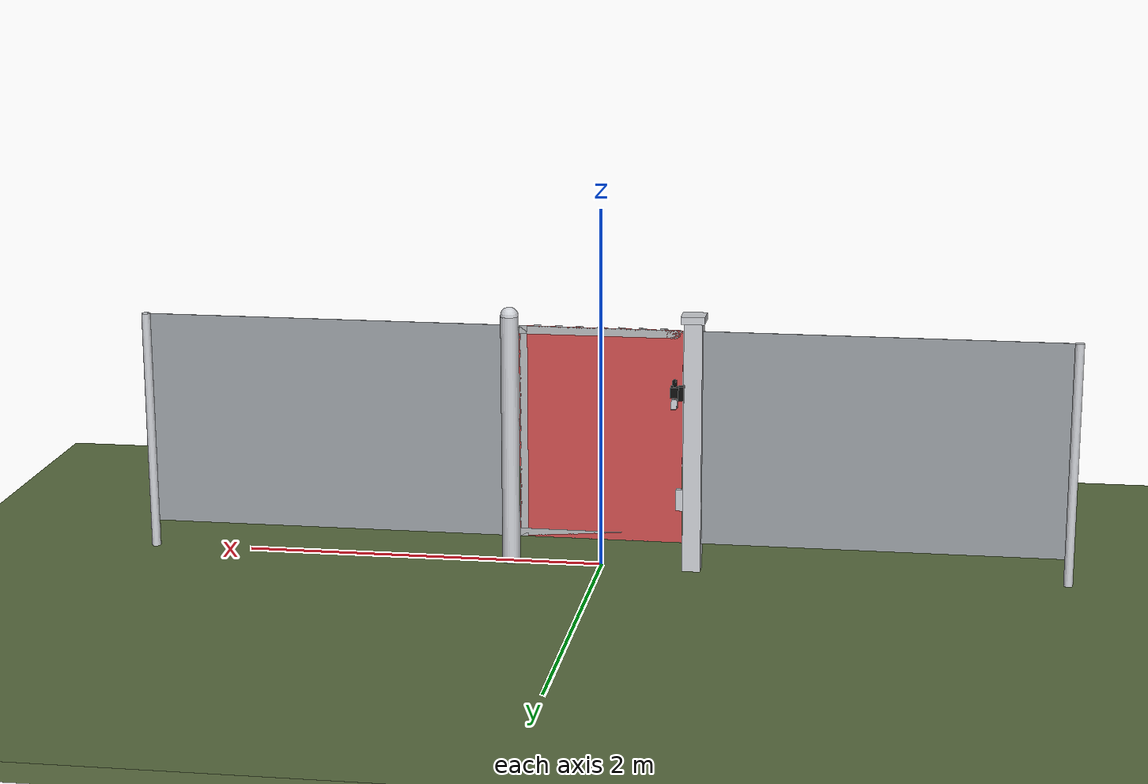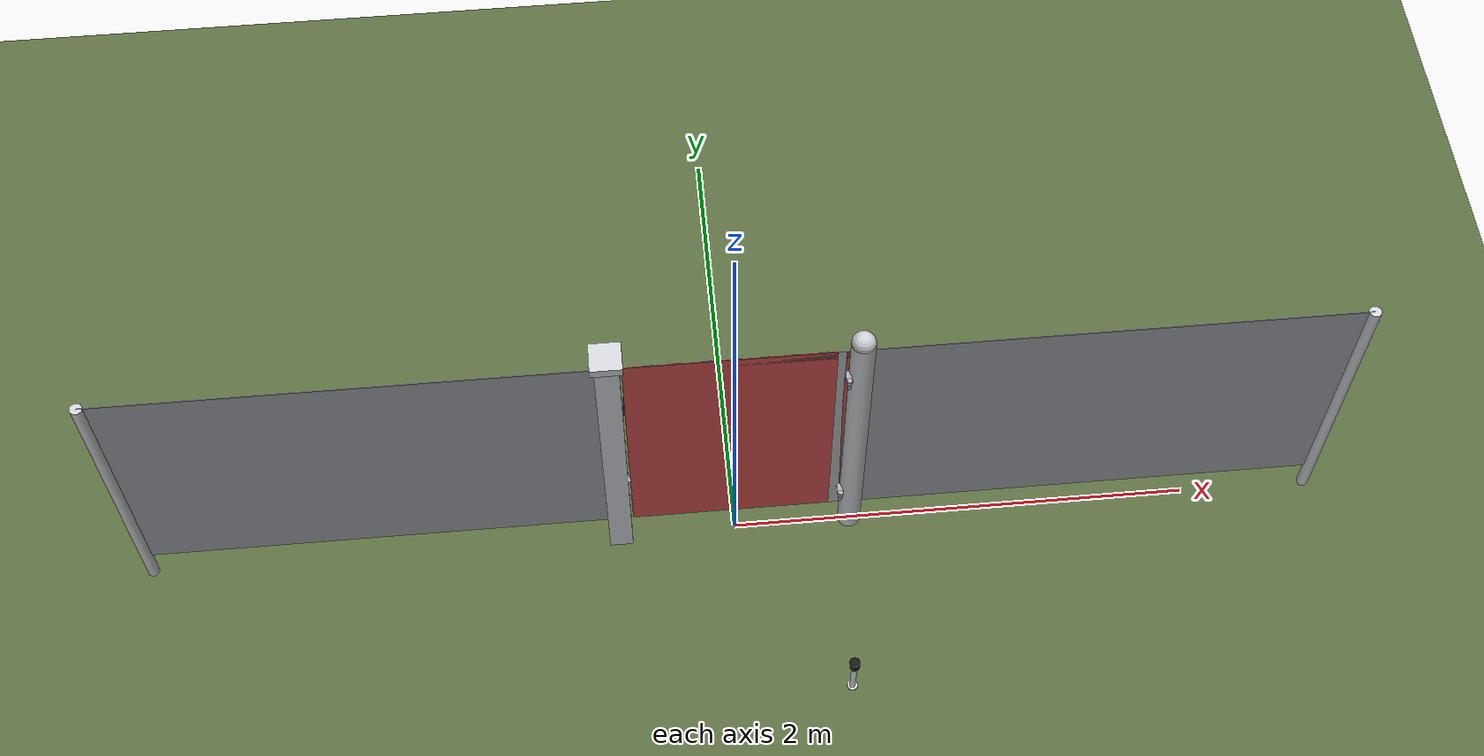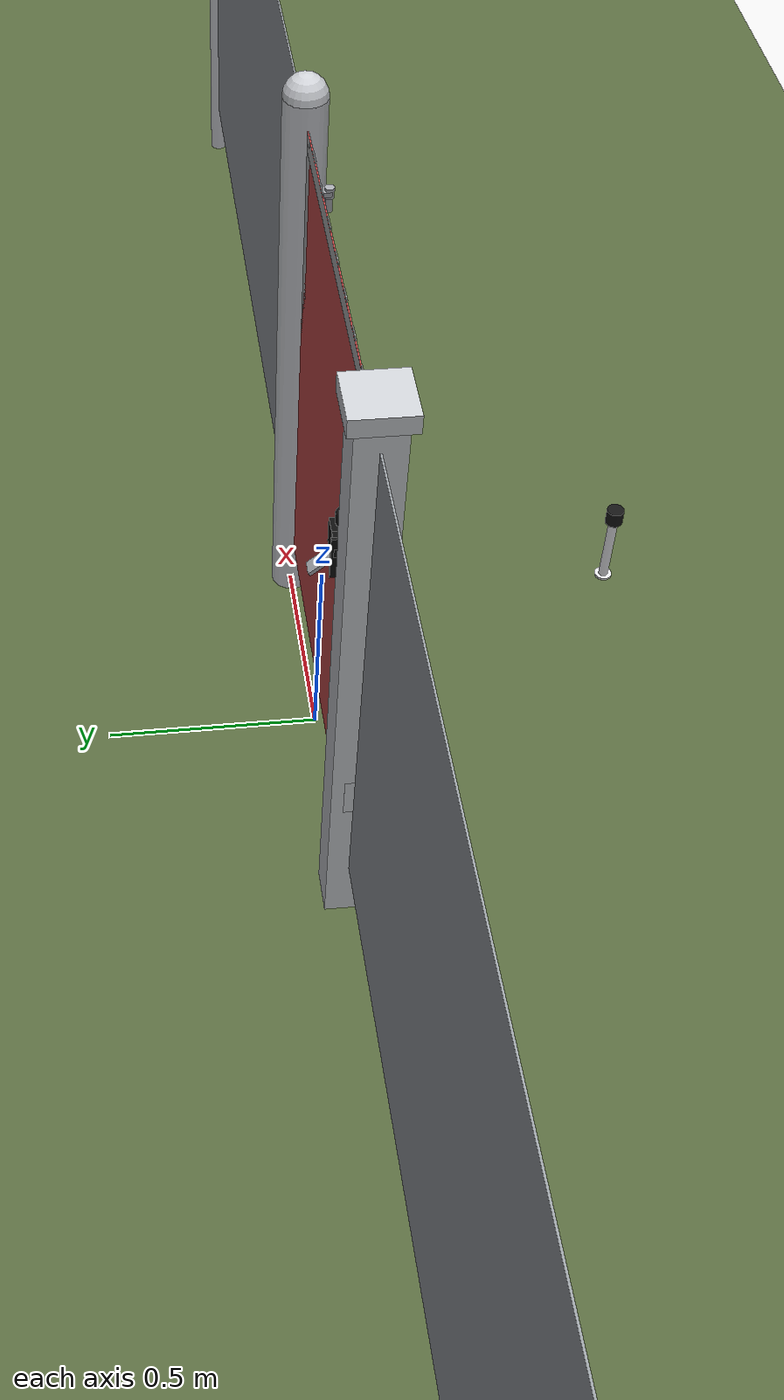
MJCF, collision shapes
<?xml version="1.0" ?>
<mujoco model="db0014_gate_swing_full">
  <compiler angle="radian" meshdir="../../hardware" texturedir="../../textures" autolimits="true" inertiafromgeom="false"/>
  <option timestep="0.002" integrator="implicitfast" cone="elliptic" impratio="10" noslip_iterations="3">
    <flag multiccd="enable"/>
  </option>
  <size memory="16M"/>
  <default>
    <geom condim="4" solref="0.005 1" solimp="0.95 0.99 0.001"/>
    <joint solreflimit="0.005 1" solimplimit="0.95 0.99 0.001"/>
    <tendon solreflimit="0.005 1"/>
    <equality solref="0.002 1"/>
  </default>
  <visual>
    <headlight ambient="0.4 0.4 0.4" diffuse="0.7 0.7 0.7" specular="0.2 0.2 0.2"/>
    <quality shadowsize="4096"/>
    <map znear="0.01" zfar="60"/>
  </visual>
  <asset>
    <mesh name="strap_hinge_78d1bbb966" file="strap_hinge_78d1bbb966.obj"/>
    <material name="mat_floor" rgba="0.35 0.42 0.25 1" specular="0.2" shininess="0.15" reflectance="0"/>
    <material name="mat_wall" rgba="0.78 0.76 0.7 1" specular="0.2" shininess="0.1" reflectance="0"/>
    <material name="mat_leaf" rgba="0.7 0.71 0.72 1" specular="0.74" shininess="0.5" reflectance="0.36"/>
    <material name="mat_hinge" rgba="0.65 0.66 0.68 1" specular="0.74" shininess="0.5" reflectance="0.36"/>
    <material name="mat_op_black_matte_metal" rgba="0.05 0.05 0.05 1" specular="0.38" shininess="0.3" reflectance="0.12"/>
    <material name="mat_keeper" rgba="0.65 0.66 0.68 1" specular="0.74" shininess="0.5" reflectance="0.36"/>
    <material name="mat_frame" rgba="0.8 0.81 0.83 1" specular="0.8" shininess="0.6" reflectance="0.4"/>
    <material name="mat_bumper_stop" rgba="0.08 0.08 0.08 1" specular="0.2" shininess="0.1" reflectance="0"/>
    <material name="mat_stop_base" rgba="0.9 0.9 0.92 1" specular="0.8" shininess="0.9" reflectance="0.4"/>
    <material name="mat_fence_mesh" rgba="0.6 0.62 0.64 0.5" specular="0.68" shininess="0.3" reflectance="0.1"/>
    <texture name="skybox" type="skybox" builtin="gradient" rgb1="0.6 0.7 0.85" rgb2="0.9 0.92 0.95" width="256" height="256"/>
  </asset>
  <worldbody>
    <light name="sun" pos="1.5 -2.5 4" dir="-0.3 0.5 -0.8" directional="true" diffuse="0.8 0.8 0.8" specular="0.3 0.3 0.3" castshadow="true"/>
    <light name="fill" pos="-1.5 2.5 3" dir="0.3 -0.5 -0.7" directional="true" diffuse="0.35 0.35 0.4" castshadow="false"/>
    <camera name="robot_view" pos="0 -1.875 1.135" xyaxes="1 0 0 0 0.26963 0.962964" fovy="52"/>
    <camera name="far_view" pos="0 1.875 1.135" xyaxes="-1 0 0 0 -0.26963 0.962964" fovy="52"/>
    <camera name="iso" pos="-1.425 -1.575 1.435" xyaxes="0.741536 -0.670913 0 0.242917 0.268487 0.932151" fovy="46"/>
    <camera name="detail_handle" pos="-0.227 -0.7635 1.345" xyaxes="0.97561 0.219512 0 -0.070934 0.315262 0.94635" fovy="38"/>
    <geom name="floor" type="box" size="6 6 0.05" pos="0 0 -0.05" material="mat_floor" group="0" contype="1" conaffinity="1" friction="0.8 0.005 0.0001" density="2400"/>
    <geom name="hinge_pintle_0" type="cylinder" size="0.008 0.02" pos="0.453 -0.05 0.274" material="mat_hinge" group="1" contype="0" conaffinity="0" density="7850"/>
    <geom name="hinge_pintle_1" type="cylinder" size="0.008 0.02" pos="0.453 -0.05 1.174" material="mat_hinge" group="1" contype="0" conaffinity="0" density="7850"/>
    <geom name="leaf_pin_housing" type="box" size="0.022 0.02 0.03" pos="-0.407 0.0365 1.015" material="mat_op_black_matte_metal" group="1" contype="0" conaffinity="0" density="1800"/>
    <geom name="leaf_pin_bracket" type="box" size="0.0165 0.02 0.01" pos="-0.4455 0.0365 1.024" material="mat_op_black_matte_metal" group="1" contype="0" conaffinity="0" density="1800"/>
    <geom name="leaf_pin_bracket_2" type="box" size="0.0165 0.02 0.006" pos="-0.4455 0.0365 0.994" material="mat_op_black_matte_metal" group="1" contype="0" conaffinity="0" density="1800"/>
    <geom name="leaf_pin_post_plate" type="box" size="0.003 0.026 0.05" pos="-0.459 0.0365 1.01" material="mat_op_black_matte_metal" group="1" contype="0" conaffinity="0" density="1800"/>
    <geom name="post_hinge" type="cylinder" size="0.05 0.7" pos="0.506 0 0.7" material="mat_frame" group="0" contype="1" conaffinity="1" friction="0.6 0.005 0.0001" density="800"/>
    <geom name="post_hinge_cap" type="sphere" size="0.05" pos="0.506 0 1.4" material="mat_frame" group="1" contype="0" conaffinity="0" density="800"/>
    <geom name="post_latch" type="box" size="0.05 0.05 0.7" pos="-0.506 0 0.7" material="mat_frame" group="0" contype="1" conaffinity="1" friction="0.6 0.005 0.0001" density="800"/>
    <geom name="post_latch_cap" type="box" size="0.065 0.065 0.02" pos="-0.506 0 1.42" material="mat_frame" group="1" contype="0" conaffinity="0" density="800"/>
    <geom name="gate_stop" type="box" size="0.02 0.012 0.06" pos="-0.436 0.0135 0.4" material="mat_frame" group="0" contype="1" conaffinity="1" friction="0.6 0.005 0.0001" density="800"/>
    <geom name="door_stop_base" type="cylinder" size="0.022 0.003" pos="0.4275 -0.815 0.003" material="mat_stop_base" group="0" contype="1" conaffinity="1" friction="0.6 0.005 0.0001" density="7850"/>
    <geom name="door_stop_post" type="cylinder" size="0.012 0.092" pos="0.4275 -0.815 0.098" material="mat_stop_base" group="0" contype="1" conaffinity="1" friction="0.6 0.005 0.0001" density="7850"/>
    <geom name="door_stop_bumper" type="cylinder" size="0.022 0.02" pos="0.4275 -0.815 0.21" material="mat_bumper_stop" group="0" contype="1" conaffinity="1" friction="0.6 0.005 0.0001" density="1100"/>
    <geom name="fence_l" type="box" size="1 0.002 0.6" pos="-1.556 0 0.75" material="mat_fence_mesh" group="0" contype="1" conaffinity="1" friction="0.6 0.005 0.0001" density="100"/>
    <geom name="fence_post_l" type="cylinder" size="0.025 0.675" pos="-2.556 0 0.675" material="mat_frame" group="0" contype="1" conaffinity="1" friction="0.6 0.005 0.0001" density="7850"/>
    <geom name="fence_r" type="box" size="1 0.002 0.6" pos="1.556 0 0.75" material="mat_fence_mesh" group="0" contype="1" conaffinity="1" friction="0.6 0.005 0.0001" density="100"/>
    <geom name="fence_post_r" type="cylinder" size="0.025 0.675" pos="2.556 0 0.675" material="mat_frame" group="0" contype="1" conaffinity="1" friction="0.6 0.005 0.0001" density="7850"/>
    <geom name="leaf_pin_post_plate_strap_0" type="box" size="0.014 0.0208 0.04" pos="-0.4425 0.0365 1.01" material="mat_op_black_matte_metal" group="1" contype="0" conaffinity="0" density="7850"/>
    <geom name="gate_stop_strap_0" type="box" size="0.0505 0.01255 0.048" pos="-0.506 0.01055 0.4" material="mat_frame" group="1" contype="0" conaffinity="0" density="7850"/>
    <site name="approach_point" pos="0 -1.5 0" quat="1 0 0 0" size="0.05" rgba="0.2 0.9 0.2 0.5" group="4"/>
    <site name="goal_point" pos="0 1.5 0" quat="1 0 0 0" size="0.05" rgba="0.2 0.9 0.2 0.5" group="4"/>
    <site name="door_plane_center" pos="0 0 0.61" quat="1 0 0 0" size="0.02" rgba="0.2 0.9 0.2 0.5" group="4"/>
    <body name="leaf" pos="0.456 0 0">
      <inertial pos="-0.346609 -0.00088 0.765009" mass="6.215232" quat="0.520888 0.535972 0.459713 -0.47966" diaginertia="0.518597919 0.932925985 1.448813201"/>
      <joint name="leaf_hinge" type="hinge" axis="0 0 1" pos="-0.003 -0.05 0" limited="true" range="0 1.570796" damping="8.14219" frictionloss="4.229279" stiffness="5" springref="-1.099612" armature="0.02"/>
      <geom name="leaf_slab_col" type="box" size="0.45 0.0015 0.6" pos="-0.453 0 0.75" material="mat_leaf" group="3" contype="1" conaffinity="1" rgba="0.8 0.3 0.3 0.25" friction="0.45 0.005 0.0001" density="1"/>
      <geom name="leaf_rail_b" type="box" size="0.45 0.0015 0.0225" pos="-0.453 0 0.1725" material="mat_leaf" group="1" contype="0" conaffinity="0" density="1"/>
      <geom name="leaf_rail_t" type="box" size="0.45 0.0015 0.0225" pos="-0.453 0 1.3275" material="mat_leaf" group="1" contype="0" conaffinity="0" density="1"/>
      <geom name="leaf_stile_h" type="box" size="0.0225 0.0015 0.6" pos="-0.0255 0 0.75" material="mat_leaf" group="1" contype="0" conaffinity="0" density="1"/>
      <geom name="leaf_stile_l" type="box" size="0.0225 0.0015 0.6" pos="-0.8805 0 0.75" material="mat_leaf" group="1" contype="0" conaffinity="0" density="1"/>
      <geom name="leaf_picket_0" type="box" size="0.02 0.00105 0.5865" pos="-0.105857 0 0.77" material="mat_leaf" group="1" contype="0" conaffinity="0" density="1"/>
      <geom name="leaf_picket_1" type="box" size="0.02 0.00105 0.5865" pos="-0.221571 0 0.77" material="mat_leaf" group="1" contype="0" conaffinity="0" density="1"/>
      <geom name="leaf_picket_2" type="box" size="0.02 0.00105 0.5865" pos="-0.337286 0 0.77" material="mat_leaf" group="1" contype="0" conaffinity="0" density="1"/>
      <geom name="leaf_picket_3" type="box" size="0.02 0.00105 0.5865" pos="-0.453 0 0.77" material="mat_leaf" group="1" contype="0" conaffinity="0" density="1"/>
      <geom name="leaf_picket_4" type="box" size="0.02 0.00105 0.5865" pos="-0.568714 0 0.77" material="mat_leaf" group="1" contype="0" conaffinity="0" density="1"/>
      <geom name="leaf_picket_5" type="box" size="0.02 0.00105 0.5865" pos="-0.684429 0 0.77" material="mat_leaf" group="1" contype="0" conaffinity="0" density="1"/>
      <geom name="leaf_picket_6" type="box" size="0.02 0.00105 0.5865" pos="-0.800143 0 0.77" material="mat_leaf" group="1" contype="0" conaffinity="0" density="1"/>
      <geom name="hinge_strap_0" type="mesh" mesh="strap_hinge_78d1bbb966" pos="-0.003 -0.0045 0.3" quat="0 0 0 1" material="mat_hinge" group="1" contype="0" conaffinity="0" density="7850"/>
      <geom name="hinge_strap_eye_0" type="cylinder" size="0.011 0.012" pos="-0.003 -0.05 0.3" material="mat_hinge" group="1" contype="0" conaffinity="0" density="7850"/>
      <geom name="hinge_strap_neck_0" type="box" size="0.012 0.02675 0.006" pos="-0.003 -0.02725 0.3" material="mat_hinge" group="1" contype="0" conaffinity="0" density="7850"/>
      <geom name="hinge_strap_1" type="mesh" mesh="strap_hinge_78d1bbb966" pos="-0.003 -0.0045 1.2" quat="0 0 0 1" material="mat_hinge" group="1" contype="0" conaffinity="0" density="7850"/>
      <geom name="hinge_strap_eye_1" type="cylinder" size="0.011 0.012" pos="-0.003 -0.05 1.2" material="mat_hinge" group="1" contype="0" conaffinity="0" density="7850"/>
      <geom name="hinge_strap_neck_1" type="box" size="0.012 0.02675 0.006" pos="-0.003 -0.02725 1.2" material="mat_hinge" group="1" contype="0" conaffinity="0" density="7850"/>
      <geom name="leaf_cup_n" type="box" size="0.016 0.004 0.02" pos="-0.863 0.0245 0.955" material="mat_keeper" group="0" contype="1" conaffinity="1" friction="0.6 0.005 0.0001" density="7800"/>
      <geom name="leaf_cup_p" type="box" size="0.016 0.004 0.02" pos="-0.863 0.0485 0.955" material="mat_keeper" group="0" contype="1" conaffinity="1" friction="0.6 0.005 0.0001" density="7800"/>
      <geom name="leaf_cup_b" type="box" size="0.016 0.016 0.004" pos="-0.863 0.0365 0.931" material="mat_keeper" group="0" contype="1" conaffinity="1" friction="0.6 0.005 0.0001" density="7800"/>
      <geom name="leaf_cup_bracket" type="box" size="0.016 0.0095 0.004" pos="-0.863 0.011 0.955" material="mat_keeper" group="1" contype="0" conaffinity="0" density="7800"/>
      <geom name="leaf_cup_ramp" type="box" size="0.016 0.0301 0.004" pos="-0.863 0.072344 0.952012" quat="0.934722 -0.355381 0 0" material="mat_keeper" group="0" contype="1" conaffinity="1" friction="0.12 0.005 0.0001" density="7800"/>
      <site name="leaf_edge_mid" pos="-0.903 0 0.6" quat="1 0 0 0" size="0.02" rgba="0.2 0.9 0.2 0.5" group="4"/>
    </body>
    <body name="leaf_pin" pos="-0.407 0.0365 1">
      <inertial pos="0 0 0.037519" mass="0.228168" quat="0.707107 0 0.707107 0" diaginertia="0.000010167 0.000346413 0.000346413"/>
      <joint name="leaf_pin_slide" type="slide" axis="0 0 1" limited="true" range="0 0.06" damping="9.526824" frictionloss="0.25" stiffness="60" springref="-0.016667" armature="0.15"/>
      <geom name="leaf_pin_geom" type="capsule" size="0.006 0.0525" pos="0 0 0.0025" material="mat_op_black_matte_metal" group="0" contype="1" conaffinity="1" friction="0.6 0.005 0.0001" density="7850"/>
      <geom name="leaf_pin_knob" type="capsule" size="0.012 0.01" pos="0 0 0.065" material="mat_op_black_matte_metal" group="0" contype="1" conaffinity="1" friction="0.6 0.005 0.0001" density="7850"/>
      <site name="leaf_grip_pin" pos="0 0 0.065" quat="1 0 0 0" size="0.012" rgba="0.2 0.9 0.2 0.5" group="4"/>
    </body>
  </worldbody>
  <sensor>
    <jointpos name="leaf_hinge_pos" joint="leaf_hinge"/>
    <jointvel name="leaf_hinge_vel" joint="leaf_hinge"/>
    <jointpos name="leaf_pin_slide_pos" joint="leaf_pin_slide"/>
    <jointvel name="leaf_pin_slide_vel" joint="leaf_pin_slide"/>
  </sensor>
</mujoco>
